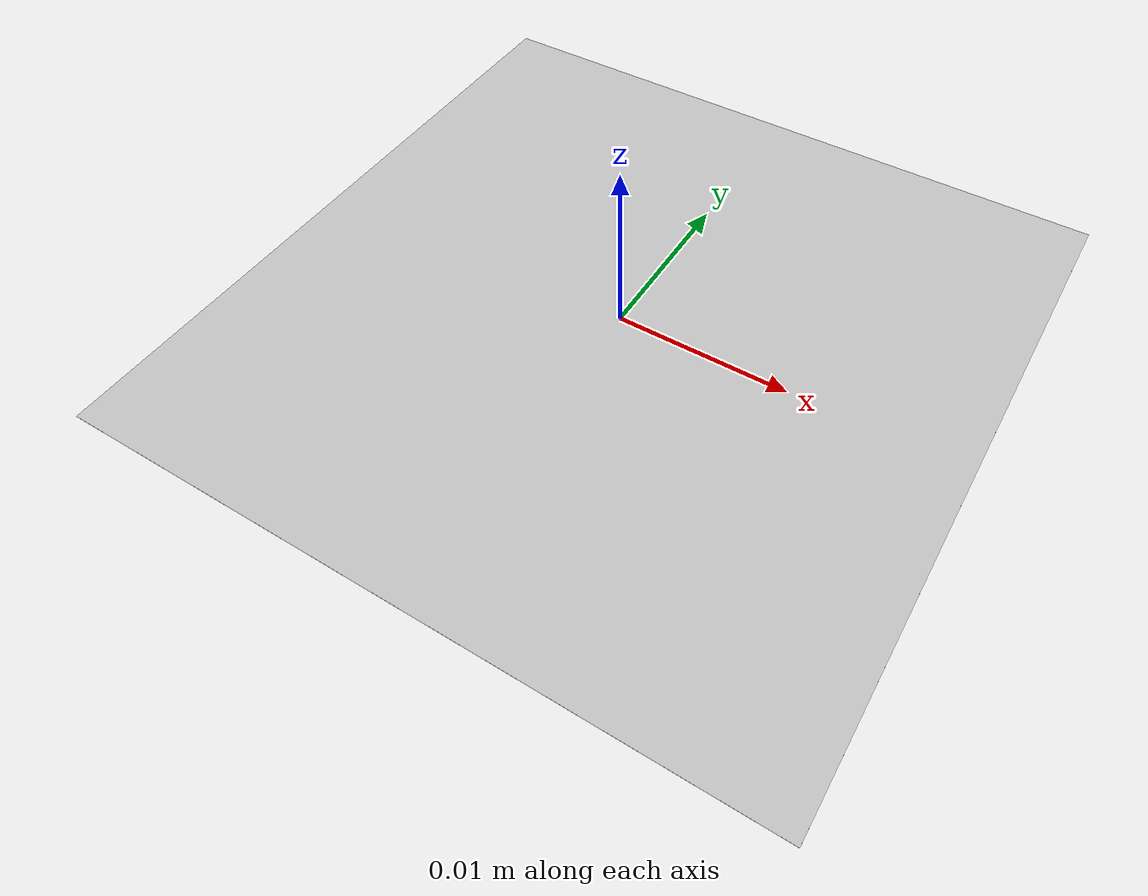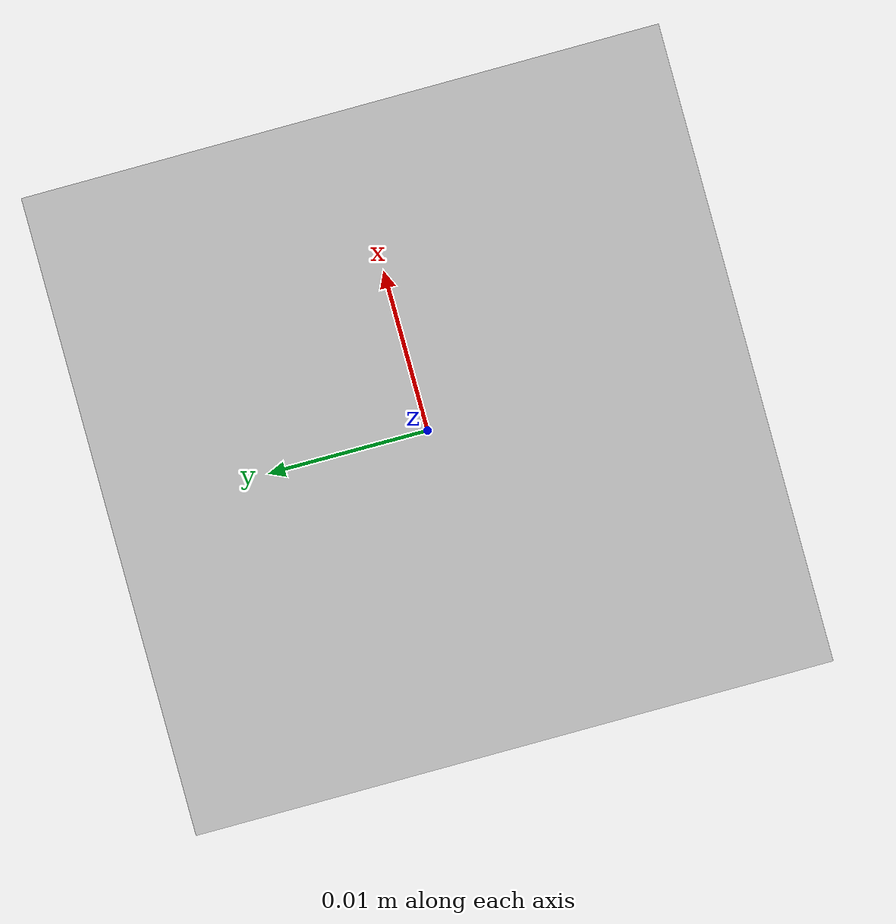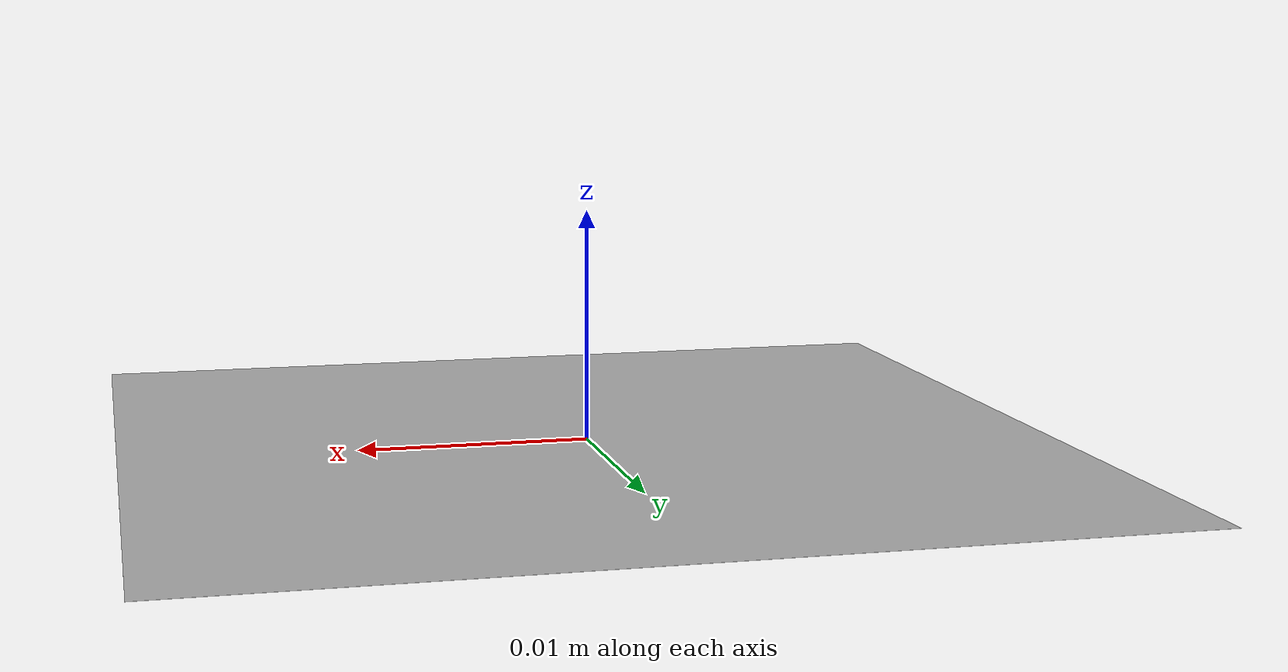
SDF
<?xml version='1.0'?>
<sdf version='1.6'>
  <model name='aruco_visual_marker_4'>
    <link name='marker'>
      <inertial>
        <pose>0 0 0 0 0 0</pose>
        <mass>0.001</mass>
        <inertia>
          <ixx>3.7499999999999997e-06</ixx>
          <ixy>0.0</ixy>
          <ixz>0.0</ixz>
          <iyy>1.8750008333333333e-06</iyy>
          <iyz>0.0</iyz>
          <izz>1.8750008333333333e-06</izz>
        </inertia>
      </inertial>
      <visual name='visual'>
      <pose>0.00005 0 0 0 0 0</pose>
        <geometry>
          <box>
            <size>0.04 0.04 1e-5</size>
          </box>
        </geometry>
        <material>
          <script>
            <uri>model://aruco_visual_marker_4/materials/scripts</uri>
            <uri>model://aruco_visual_marker_4/materials/textures</uri>
            <name>ArucoVisualMarker4/Marker</name>
          </script>
        </material>
      </visual>
      <collision name='collision'>
        <pose frame=''>0 0 0 0 -0 0</pose>
        <geometry>
          <box>
            <size>0.04 0.04 1e-05</size>
          </box>
        </geometry>
      </collision>
    </link>
  </model>
</sdf>
